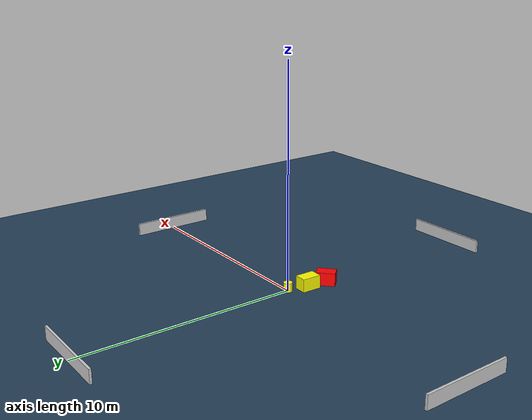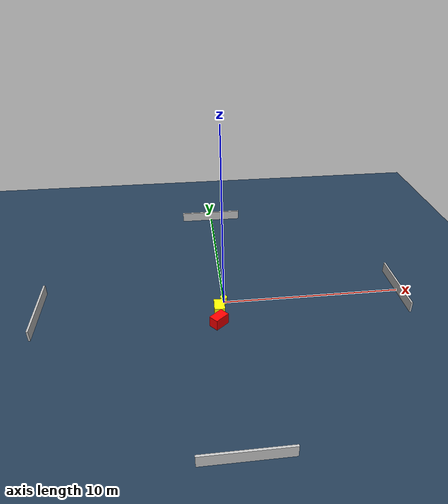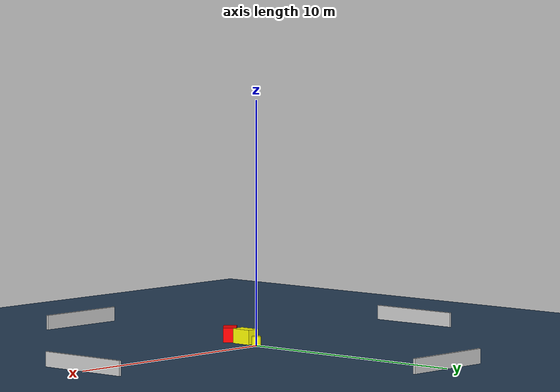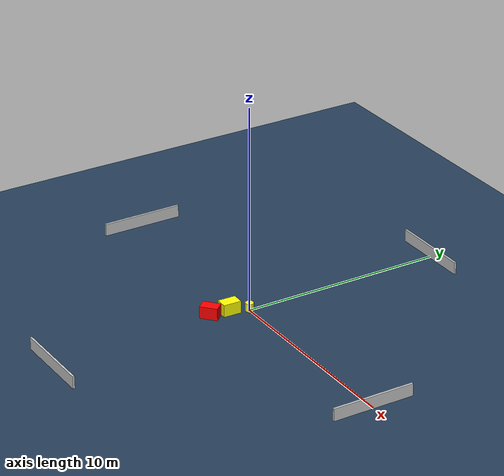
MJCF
<?xml version="1.0" ?>
<mujoco model="generated_environment">
  <option timestep="0.01" integrator="RK4" cone="elliptic"/>
  <default>
    <geom density="1"/>
  </default>
  <asset>
    <texture builtin="gradient" height="3072" name="skybox" rgb1="0.3 0.5 0.7" rgb2="0 0 0" type="skybox" width="512"/>
    <texture builtin="checker" height="300" name="groundplane" rgb1="0.2 0.3 0.4" rgb2="0.1 0.2 0.3" type="2d" width="300"/>
    <material name="groundplane" reflectance="0.2" texrepeat="5 5" texture="groundplane"/>
  </asset>
  <worldbody>
    <light dir="0 0 -1" directional="true" pos="0 0 1.5"/>
    <geom condim="3" friction="0.5 0.005 0.001" material="groundplane" name="floor" pos="0 0 0" size="0 0 0.05" type="plane"/>
    <body name="walls">
      <geom name="wall_1" condim="4" pos="-10.0 0.0 0.3" rgba="0.800000011920929 0.800000011920929 0.800000011920929 1.0" size="0.05 2.0 0.3" type="box"/>
      <geom name="wall_2" condim="4" pos="10.0 0.0 0.3" rgba="0.800000011920929 0.800000011920929 0.800000011920929 1.0" size="0.05 2.0 0.3" type="box"/>
      <geom name="wall_3" condim="4" pos="0.0 -10.0 0.3" rgba="0.800000011920929 0.800000011920929 0.800000011920929 1.0" size="2.0 0.05 0.3" type="box"/>
      <geom name="wall_4" condim="4" pos="0.0 10.0 0.3" rgba="0.800000011920929 0.800000011920929 0.800000011920929 1.0" size="2.0 0.05 0.3" type="box"/>
    </body>
    <body name="robot">
      <joint name="joint_x" type="slide" pos="0 0 0" axis="1 0 0"/>
      <joint name="joint_y" type="slide" pos="0 0 0" axis="0 1 0"/>
      <geom name="robot" type="cylinder" pos="0.0 0.0 0.2" size="0.2 0.2 0.0" mass="5.0" friction="1.0 0.005 0.0001" condim="4" rgba="1.0 1.0 0.0 1.0"/>
    </body>
    <body name="obstacle_1_movable">
      <geom name="obstacle_1_movable" condim="4" pos="-0.3034105364032846 -0.8697706690400409 0.3" euler="0 0 358.39021142589047" friction="0.0 0.005 0.001" rgba="1.0 1.0 0.0 1.0" size="0.2820065821924944 0.44195235958576323 0.3" type="box" mass="0.1"/>
      <joint type="free"/>
    </body>
    <body name="obstacle_2_static">
      <geom name="obstacle_2_static" condim="4" pos="-0.40332062232616606 -1.820502904537543 0.3" euler="0 0 310.68110119032553" friction="0.0 0.005 0.001" rgba="1.0 0.0 0.0 1.0" size="0.27486102331974366 0.42823172921430597 0.3" type="box"/>
    </body>
  </worldbody>
  <actuator>
    <motor name="actuator_x" joint="joint_x" gear="1" ctrlrange="-1 1"/>
    <motor name="actuator_y" joint="joint_y" gear="1" ctrlrange="-1 1"/>
  </actuator>
</mujoco>
